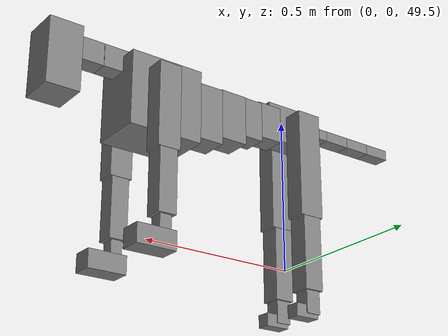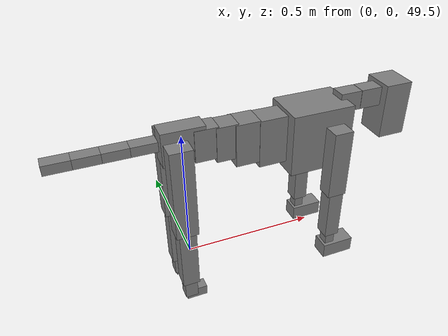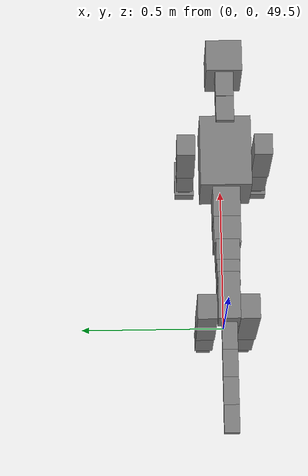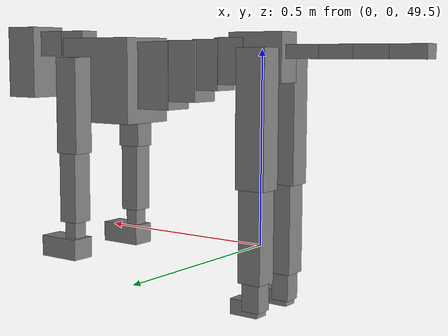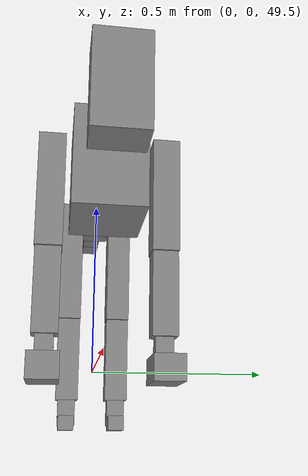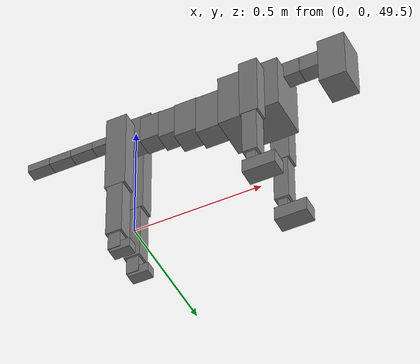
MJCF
<mujoco model="dog">

    <default>
        <joint armature="0.02" stiffness="1" damping="0.2" limited="true"/>
        <geom condim="3" friction="1 0.05 0.05" margin="0.01"/>
        <motor ctrllimited="true" ctrlrange="-1.0 1.0" forcelimited="true" gear="50"/>
    </default>

    <compiler inertiafromgeom="true" angle="radian"/>

    <option timestep="0.016" iterations="50" tolerance="1e-10" solver="Newton" jacobian="dense" cone="pyramidal"/>

    <size nconmax="20000" njmax="60000" nstack="5000000"/>
    <visual>
        <map force="0.1" zfar="30"/>
        <rgba haze="0.15 0.25 0.35 1"/>
        <quality shadowsize="2048"/>
        <global offwidth="800" offheight="800"/>
    </visual>

    <asset>
        <texture type="skybox" builtin="gradient" rgb1="0.3 0.5 0.7" rgb2="0 0 0" width="512" height="512"/>
        <texture name="texplane" type="2d" builtin="checker" rgb1=".2 .3 .4" rgb2=".1 0.15 0.2" width="512" height="512"
                 mark="cross" markrgb=".8 .8 .8"/>
        <texture name="texgeom" type="cube" builtin="flat" mark="cross" width="127" height="1278" rgb1="0.8 0.6 0.4"
                 rgb2="0.8 0.6 0.4" markrgb="1 1 1" random="0.01"/>

        <material name="matplane" reflectance="0.3" texture="texplane" texrepeat="1 1" texuniform="true"/>
        <material name="matgeom" texture="texgeom" texuniform="true" rgba="0.8 0.6 .4 1"/>
    </asset>

    <worldbody>
        <geom name="floor" pos="0 0 0" size="0 0 .25" type="plane" material="matplane" condim="3"/>

        <light directional="false" diffuse=".2 .2 .2" specular="0 0 0" pos="0 0 5" dir="0 0 -1" castshadow="false"/>
        <light mode="targetbodycom" target="torso" directional="false" diffuse=".8 .8 .8" specular="0.3 0.3 0.3"
               pos="0 0 4.0" dir="0 0 -1"/>

        <body name="root" pos="0 0 50">
            <freejoint name="root_1"/>
            <geom type="box" pos="0 0 -0.02" size="0.0774  0.0358  0.063" density="2030"/>

            <body name="spine1" pos="0.054 0 0">
                <joint name="spine1_y" axis="0 1 0" range="0 0.7" limited="true"/>
                <geom type="box" pos="0.02375 0 -0.03" size="0.04375  0.0375  0.05985" density="2030"/>

                <body name="spine2" pos="0.0612 0 0">
                    <joint name="spine2_y" axis="0 1 0" range="-0.15 0.15" limited="true"/>
                    <geom type="box" pos="0.03555  0  -0.04" size="0.04055  0.039  0.06615" density="2030"/>

                    <body name="spine3" pos="0.0730 0 0">
                        <joint name="spine3_y" axis="0 1 0" range="-0.15 0.15" limited="true"/>
                        <geom type="box" pos="0.03555  0  -0.057" size="0.04555  0.0445  0.081" density="2030"/>

                        <body name="spine4" pos="0.0780 0 0">
                            <joint name="spine4_y" axis="0 1 0" range="-0.15 0.15" limited="true"/>
                            <geom type="box" pos="0.05265  0  -0.07" size="0.05265  0.045  0.09135" density="2030"/>

                            <body name="torso" pos="0.1082 0 0">
                                <joint name="torso_y" axis="0 1 0" range="-0.15 0.15" limited="true"/>
                                <geom type="box" pos="0.11925  0  -0.085" size="0.11925  0.085  0.11745"
                                      density="2030"/>

                                <body name="neck1" pos="0.2160  0   0.0180">
                                    <joint name="neck1_y" axis="0 1 0" range="-1.2  -1" limited="true"/>
                                    <geom type="box" pos="0.0423  0  0" size="0.0423  0.03  0.036" density="2325"/>

                                    <body name="neck2" pos="0.0853  0  0">
                                        <joint name="neck2_y" axis="0 1 0" range="0.1  0" limited="true"/>
                                        <geom type="box" pos="0.0423  0  0" size="0.0423  0.03  0.036" density="2325"/>

                                        <body name="head" pos="0.0853  0  0">
                                            <joint name="head_y" axis="0 1 0" range="-0.3  -0.2" limited="true"/>
                                            <geom type="box" pos="0.0531  0  -0.055" size="0.0531  0.06  0.1044"
                                                  density="4030"/>

                                        </body>
                                    </body>
                                </body>

                                <body name="front_shoulder" pos="0.156  0   -0.0480">
                                    <joint name="front_shoulder_y" axis="0 1 0" range="-1 1.5" limited="true"/>
                                    <geom type="box" pos="0 0.13 -0.1050" size="0.0359  0.0307  0.1317" density="1158"/>
                                    <geom type="box" pos="0 -0.13 -0.1050" size="0.0359  0.0307  0.1317"
                                          density="1158"/>

                                    <body name="front_elbow" pos="0  0  -0.2100">
                                        <joint name="front_elbow_y" axis="0 1 0" range="-2 0" limited="true"/>
                                        <geom type="box" pos="0 0.13 -0.1095" size="0.0286  0.0292  0.1095"
                                              density="1081"/>
                                        <geom type="box" pos="0 -0.13 -0.1095" size="0.0286  0.0292  0.1095"
                                              density="1081"/>

                                        <body name="front_wrist" pos="0  0  -0.2191">
                                            <joint name="front_wrist_y" axis="0 1 0" range="-0.2 0" limited="true"/>
                                            <geom type="box" pos="0 0.13 -0.0304" size="0.0185  0.0205  0.0436"
                                                  density="1664"/>
                                            <geom type="box" pos="0 -0.13 -0.0304" size="0.0185  0.0205  0.0436"
                                                  density="1664"/>

                                            <body name="front_finger_end" pos="0  0  -0.0609">
                                                <joint name="front_finger_y" axis="0 1 0" range="-0.4 1"
                                                       limited="true"/>
                                                <geom type="box" pos="0.0342  0.13  -0.0140"
                                                      size="0.0626  0.0342  0.0290" density="1515"/>
                                                <geom type="box" pos="0.0342  -0.13  -0.0140"
                                                      size="0.0626  0.0342  0.0290" density="1515"/>

                                            </body>

                                        </body>
                                    </body>
                                </body>

                            </body>
                        </body>
                    </body>
                </body>
            </body>

            <body name="back_hip" pos="-0.03 0 -0.018">
                <joint name="back_hip_y" axis="0 1 0" range="-1.5 0.3" limited="true"/>
                <geom type="box" pos="0 0.07 -0.1519" size="0.0411  0.0322  0.1747" density="1154"/>
                <geom type="box" pos="0 -0.07 -0.1519" size="0.0411  0.0322  0.1747" density="1154"/>

                <body name="back_knee" pos="0  0  -0.3038">
                    <joint name="back_knee_y" axis="0 1 0" range="0 2.8" limited="true"/>
                    <geom type="box" pos="0 0.07 -0.1205" size="0.0318  0.0314  0.1361" density="1227"/>
                    <geom type="box" pos="0 -0.07 -0.1205" size="0.0318  0.0314  0.1361" density="1227"/>

                    <body name="back_ankle" pos="0  0  -0.2410">
                        <joint name="back_ankle_y" axis="0 1 0" range="-2.2 0" limited="true"/>
                        <geom type="box" pos="0 0.07 -0.0381" size="0.0242  0.0242  0.0493" density="1284"/>
                        <geom type="box" pos="0 -0.07 -0.0381" size="0.0242  0.0242  0.0493" density="1284"/>

                        <body name="back_toe_end" pos="0  0  -0.0762">
                            <joint name="back_toe_y" axis="0 1 0" range="-0.4 1" limited="true"/>
                            <geom type="box" pos="0.0216  0.07  -0.0050" size="0.0395  0.0216  0.0200" density="1515"/>
                            <geom type="box" pos="0.0216  -0.07  -0.0050" size="0.0395  0.0216  0.0200" density="1515"/>

                        </body>
                    </body>
                </body>
            </body>

            <body name="tail1" pos="-0.074 0 -0.006">
                <joint name="tail1_y" axis="0 1 0" range="-0.2 0.2" limited="true"/>
                <geom type="box" pos="-0.0536  0  0" size="0.045  0.025  0.0175" density="1587"/>

                <body name="tail2" pos="-0.09 0 0">
                    <joint name="tail2_y" axis="0 1 0" range="-0.2 0.2" limited="true"/>
                    <geom type="box" pos="-0.0536  0  0" size="0.045  0.025  0.0175" density="1587"/>

                    <body name="tail3" pos="-0.09 0 0">
                        <joint name="tail3_y" axis="0 1 0" range="-0.2 0.2" limited="true"/>
                        <geom type="box" pos="-0.0536  0  0" size="0.045  0.025  0.0175" density="1587"/>

                        <body name="tail4" pos="-0.09 0 0">
                            <joint name="tail4_y" axis="0 1 0" range="-0.2 0.2" limited="true"/>
                            <geom type="box" pos="-0.0536  0  0" size="0.045  0.025  0.0175" density="1587"/>

                        </body>
                    </body>
                </body>
            </body>
        </body>
    </worldbody>

    <actuator>
        <motor joint="spine1_y" forcerange="-150 150     "/>
        <motor joint="spine2_y" forcerange="-150 150     "/>
        <motor joint="spine3_y" forcerange="-150 150     "/>
        <motor joint="spine4_y" forcerange="-150 150     "/>
        <motor joint="torso_y" forcerange="-150 150     "/>
        <motor joint="neck1_y" forcerange="-100 100       "/>
        <motor joint="neck2_y" forcerange="-100 100       "/>
        <motor joint="head_y" forcerange="-150 150       "/>
        <motor joint="front_shoulder_y" forcerange="-150.41 154.27"/>
        <motor joint="front_elbow_y" forcerange="-115.13 197.39"/>
        <motor joint="front_wrist_y" forcerange="-87.96 76.30"/>
        <motor joint="front_finger_y" forcerange="-42.58 99.64"/>
        <motor joint="back_hip_y" forcerange="-270.19 359.30"/>
        <motor joint="back_knee_y" forcerange="-287.74 368.77"/>
        <motor joint="back_angle_y" forcerange="-102.86 184.06"/>
        <motor joint="back_toe_y" forcerange="-24.79 67.67"/>
        <motor joint="tail1_y" forcerange="-50 50     "/>
        <motor joint="tail2_y" forcerange="-50 50     "/>
        <motor joint="tail3_y" forcerange="-50 50     "/>
        <motor joint="tail4_y" forcerange="-50 50     "/>
    </actuator>
</mujoco>
